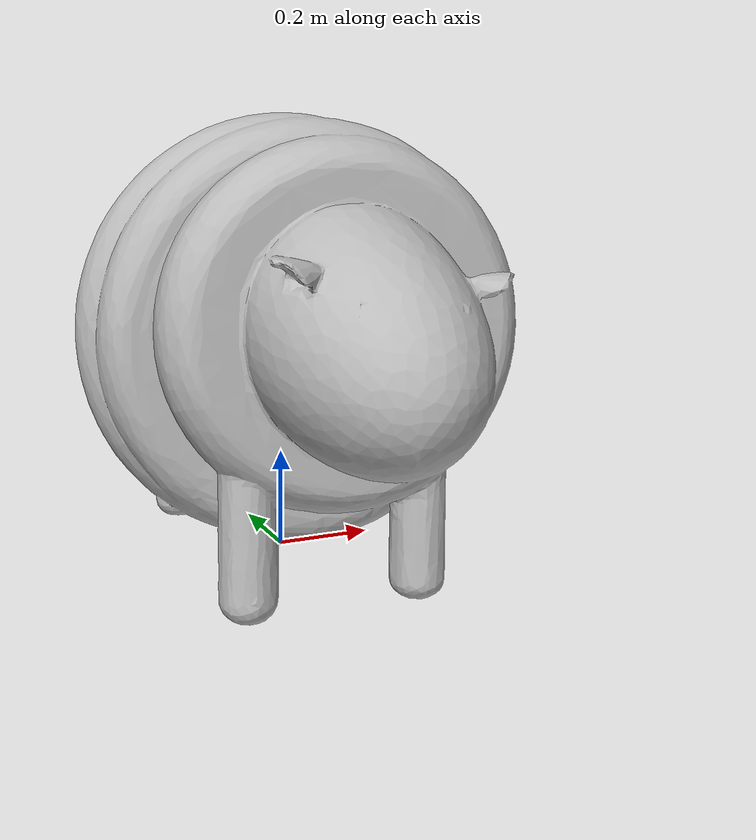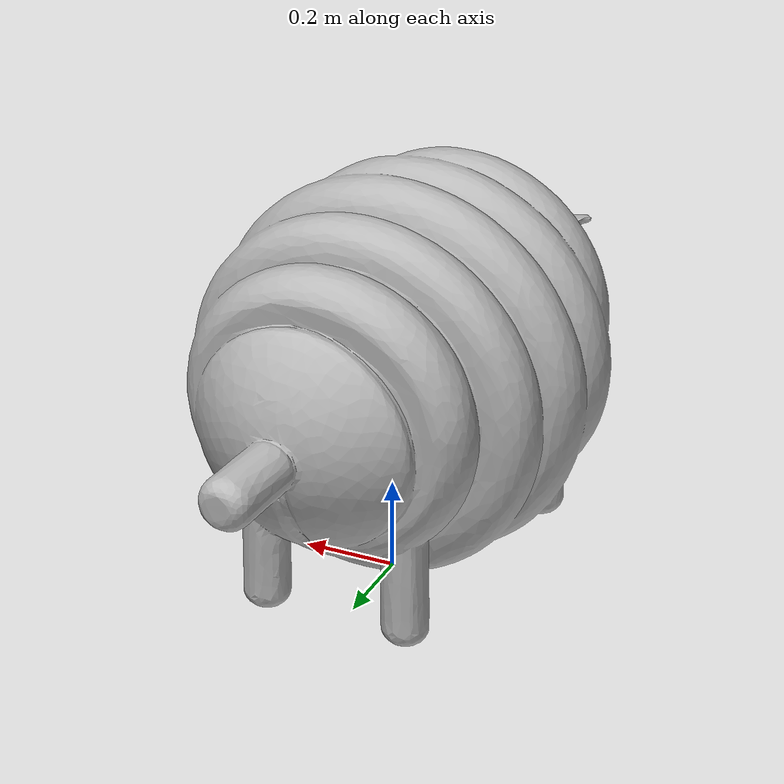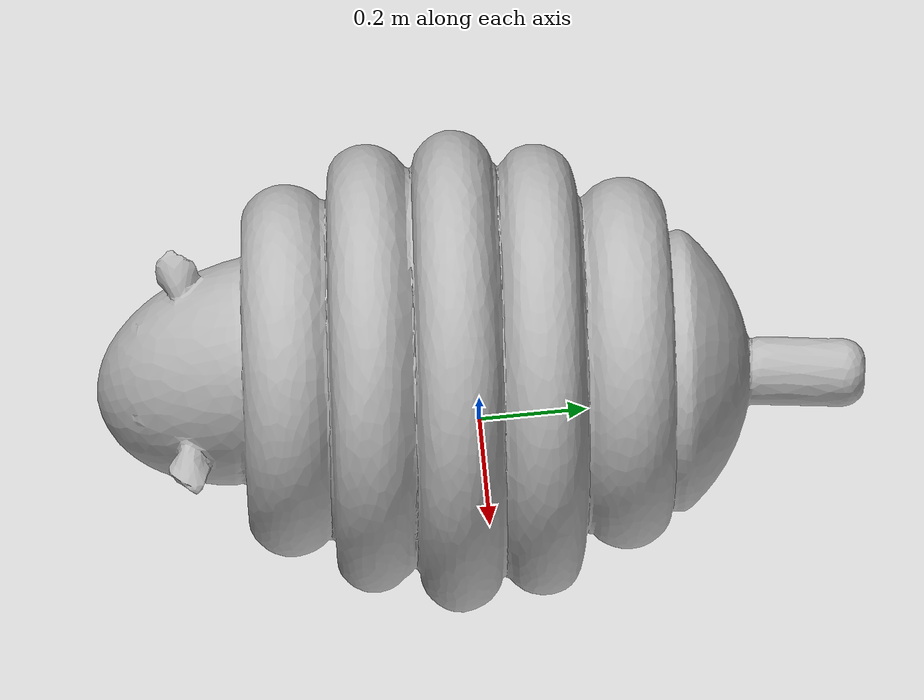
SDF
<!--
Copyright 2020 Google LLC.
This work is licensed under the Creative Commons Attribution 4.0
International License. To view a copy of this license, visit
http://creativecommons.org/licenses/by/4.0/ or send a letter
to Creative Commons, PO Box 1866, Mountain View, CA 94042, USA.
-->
<?xml version="1.0" ?>
<sdf version="1.6">
  <model name="LACING_SHEEP">
    <link name="link_0">
      <visual name="visual">
        <geometry>
          <mesh>
            <uri>model://LACING_SHEEP/meshes/model.obj</uri>
            <scale>10 10 10</scale>
          </mesh>
        </geometry>
      </visual>
      <collision name="collision_0">
        <geometry>
          <mesh>
            <uri>model://LACING_SHEEP/meshes/model.obj</uri>
            <scale>10 10 10</scale>
          </mesh>
        </geometry>
      </collision>
    </link>
  </model>
</sdf>
